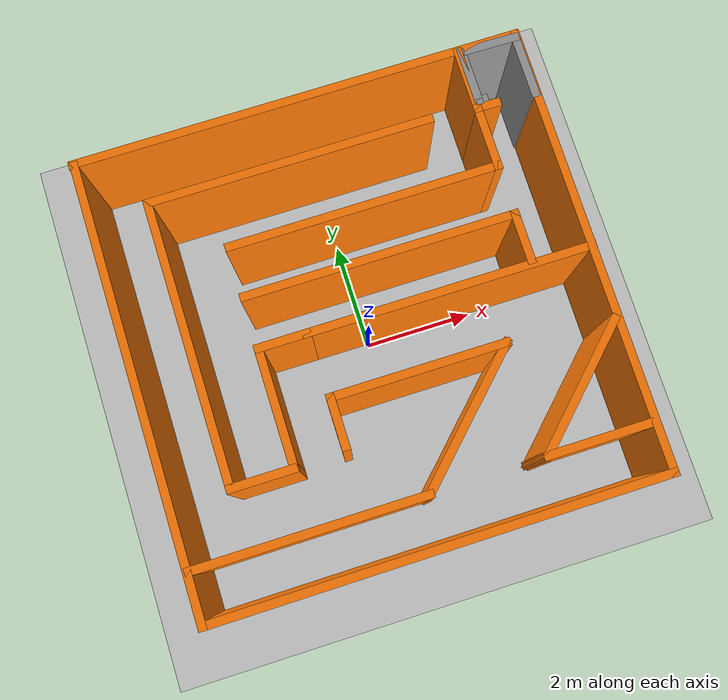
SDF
<sdf version="1.7">
 <world name="default">
  <light name="sun" type="directional">
   <pose>0 0 10 0 -0 0</pose>
   <diffuse>0.8 0.8 0.8 1</diffuse>
   <specular>0.2 0.2 0.2 1</specular>
   <attenuation>
    <range>1000</range>
    <constant>0.9</constant>
    <linear>0.01</linear>
    <quadratic>0.001</quadratic>
   </attenuation>
   <direction>-0.5 0.1 -0.9</direction>
   <spot><inner_angle>0</inner_angle><outer_angle>0</outer_angle><falloff>0</falloff></spot>
  </light>
  <model name="ground_plane">
   <static>1</static>
   <link name="link">
    <collision name="collision">
     <geometry><plane><normal>0 0 1</normal><size>100 100</size></plane></geometry>
     <surface>
      <contact><collide_bitmask>65535</collide_bitmask></contact>
      <friction><ode><mu>100</mu><mu2>50</mu2></ode></friction>
     </surface>
    </collision>
    <visual name="visual">
     <cast_shadows>0</cast_shadows>
     <geometry><plane><normal>0 0 1</normal><size>100 100</size></plane></geometry>
     <material>
      <script><uri>file://media/materials/scripts/gazebo.material</uri><name>Gazebo/Grey</name></script>
     </material>
    </visual>
   </link>
  </model>
  <gravity>0 0 -9.8</gravity>
  <magnetic_field>6e-06 2.3e-05 -4.2e-05</magnetic_field>
  <atmosphere type="adiabatic"/>
  <physics type="ode">
   <max_step_size>0.001</max_step_size>
   <real_time_factor>1</real_time_factor>
   <real_time_update_rate>1000</real_time_update_rate>
  </physics>
  <scene><ambient>0.4 0.4 0.4 1</ambient><background>0.7 0.7 0.7 1</background><shadows>1</shadows></scene>
  <spherical_coordinates>
   <surface_model>EARTH_WGS84</surface_model>
   <latitude_deg>0</latitude_deg>
   <longitude_deg>0</longitude_deg>
   <elevation>0</elevation>
   <heading_deg>0</heading_deg>
  </spherical_coordinates>
  <model name="map1">
   <pose>-0.012586 0.098358 0 0 -0 0</pose>
   <link name="Wall_1">
    <collision name="Wall_1_Collision">
     <geometry><box><size>8.25 0.15 2.5</size></box></geometry>
     <pose>0 0 1.25 0 -0 0</pose>
    </collision>
    <visual name="Wall_1_Visual">
     <pose>0 0 1.25 0 -0 0</pose>
     <geometry><box><size>8.25 0.15 2.5</size></box></geometry>
     <material>
      <script><uri>file://media/materials/scripts/gazebo.material</uri><name>Gazebo/Grey</name></script>
      <ambient>0.996078 0.47451 0.0196078 1</ambient>
     </material>
     <meta><layer>0</layer></meta>
    </visual>
    <pose>-4.03694 -0.011921 0 0 -0 1.5708</pose>
   </link>
   <link name="Wall_14">
    <collision name="Wall_14_Collision">
     <geometry><box><size>8.25 0.15 2.5</size></box></geometry>
     <pose>0 0 1.25 0 -0 0</pose>
    </collision>
    <visual name="Wall_14_Visual">
     <pose>0 0 1.25 0 -0 0</pose>
     <geometry><box><size>8.25 0.15 2.5</size></box></geometry>
     <material>
      <script><uri>file://media/materials/scripts/gazebo.material</uri><name>Gazebo/Grey</name></script>
      <ambient>0.996078 0.47451 0.0196078 1</ambient>
     </material>
     <meta><layer>0</layer></meta>
    </visual>
    <pose>4.04557 0.011992 0 0 -0 1.56865</pose>
   </link>
   <link name="Wall_15">
    <collision name="Wall_15_Collision">
     <geometry><box><size>8.25 0.15 2.5</size></box></geometry>
     <pose>0 0 1.25 0 -0 0</pose>
    </collision>
    <visual name="Wall_15_Visual">
     <pose>0 0 1.25 0 -0 0</pose>
     <geometry><box><size>8.25 0.15 2.5</size></box></geometry>
     <material>
      <script><uri>file://media/materials/scripts/gazebo.material</uri><name>Gazebo/Grey</name></script>
      <ambient>0.996078 0.47451 0.0196078 1</ambient>
     </material>
     <meta><layer>0</layer></meta>
    </visual>
    <pose>-0.004428 4.06199 0 0 -0 3.14159</pose>
   </link>
   <link name="Wall_20">
    <collision name="Wall_20_Collision">
     <geometry><box><size>4.25 0.15 2.5</size></box></geometry>
     <pose>0 0 1.25 0 -0 0</pose>
    </collision>
    <visual name="Wall_20_Visual">
     <pose>0 0 1.25 0 -0 0</pose>
     <geometry><box><size>4.25 0.15 2.5</size></box></geometry>
     <material>
      <script><uri>file://media/materials/scripts/gazebo.material</uri><name>Gazebo/Grey</name></script>
      <ambient>0.996078 0.47451 0.0196078 1</ambient>
     </material>
     <meta><layer>0</layer></meta>
    </visual>
    <pose>-1.95495 -3.17094 0 0 -0 0</pose>
   </link>
   <link name="Wall_22">
    <collision name="Wall_22_Collision">
     <geometry><box><size>3 0.15 2.5</size></box></geometry>
     <pose>0 0 1.25 0 -0 0</pose>
    </collision>
    <visual name="Wall_22_Visual">
     <pose>0 0 1.25 0 -0 0</pose>
     <geometry><box><size>3 0.15 2.5</size></box></geometry>
     <material>
      <script><uri>file://media/materials/scripts/gazebo.material</uri><name>Gazebo/Grey</name></script>
      <ambient>0.996078 0.47451 0.0196078 1</ambient>
     </material>
     <meta><layer>0</layer></meta>
    </visual>
    <pose>1.10267 -2.16331 0 0 -0 0.785398</pose>
   </link>
   <link name="Wall_23">
    <collision name="Wall_23_Collision">
     <geometry><box><size>3.25 0.15 2.5</size></box></geometry>
     <pose>0 0 1.25 0 -0 0</pose>
    </collision>
    <visual name="Wall_23_Visual">
     <pose>0 0 1.25 0 -0 0</pose>
     <geometry><box><size>3.25 0.15 2.5</size></box></geometry>
     <material>
      <script><uri>file://media/materials/scripts/gazebo.material</uri><name>Gazebo/Grey</name></script>
      <ambient>0.996078 0.47451 0.0196078 1</ambient>
     </material>
     <meta><layer>0</layer></meta>
    </visual>
    <pose>0.560299 -1.15568 0 0 -0 3.14159</pose>
   </link>
   <link name="Wall_24">
    <collision name="Wall_24_Collision">
     <geometry><box><size>1 0.15 2.5</size></box></geometry>
     <pose>0 0 1.25 0 -0 0</pose>
    </collision>
    <visual name="Wall_24_Visual">
     <pose>0 0 1.25 0 -0 0</pose>
     <geometry><box><size>1 0.15 2.5</size></box></geometry>
     <material>
      <script><uri>file://media/materials/scripts/gazebo.material</uri><name>Gazebo/Grey</name></script>
      <ambient>0.996078 0.47451 0.0196078 1</ambient>
     </material>
     <meta><layer>0</layer></meta>
    </visual>
    <pose>-0.989701 -1.58068 0 0 -0 -1.5708</pose>
   </link>
   <link name="Wall_28">
    <collision name="Wall_28_Collision">
     <geometry><box><size>2 0.15 2.5</size></box></geometry>
     <pose>0 0 1.25 0 -0 0</pose>
    </collision>
    <visual name="Wall_28_Visual">
     <pose>0 0 1.25 0 -0 0</pose>
     <geometry><box><size>2 0.15 2.5</size></box></geometry>
     <material>
      <script><uri>file://media/materials/scripts/gazebo.material</uri><name>Gazebo/Grey</name></script>
      <ambient>0.996078 0.47451 0.0196078 1</ambient>
     </material>
     <meta><layer>0</layer></meta>
    </visual>
    <pose>3.06985 -3.15573 0 0 -0 3.14159</pose>
   </link>
   <link name="Wall_30">
    <collision name="Wall_30_Collision">
     <geometry><box><size>2.75 0.15 2.5</size></box></geometry>
     <pose>0 0 1.25 0 -0 0</pose>
    </collision>
    <visual name="Wall_30_Visual">
     <pose>0 0 1.25 0 -0 0</pose>
     <geometry><box><size>2.75 0.15 2.5</size></box></geometry>
     <material>
      <script><uri>file://media/materials/scripts/gazebo.material</uri><name>Gazebo/Grey</name></script>
      <ambient>0.996078 0.47451 0.0196078 1</ambient>
     </material>
     <meta><layer>0</layer></meta>
    </visual>
    <pose>3.06409 -2.23649 0 0 -0 0.785398</pose>
   </link>
   <link name="Wall_32">
    <collision name="Wall_32_Collision">
     <geometry><box><size>5.25 0.15 2.5</size></box></geometry>
     <pose>0 0 1.25 0 -0 0</pose>
    </collision>
    <visual name="Wall_32_Visual">
     <pose>0 0 1.25 0 -0 0</pose>
     <geometry><box><size>5.25 0.15 2.5</size></box></geometry>
     <material>
      <script><uri>file://media/materials/scripts/gazebo.material</uri><name>Gazebo/Grey</name></script>
      <ambient>0.996078 0.47451 0.0196078 1</ambient>
     </material>
     <meta><layer>0</layer></meta>
    </visual>
    <pose>1.49899 0.002193 0 0 -0 3.14159</pose>
   </link>
   <link name="Wall_33">
    <collision name="Wall_33_Collision">
     <geometry><box><size>1 0.15 2.5</size></box></geometry>
     <pose>0 0 1.25 0 -0 0</pose>
    </collision>
    <visual name="Wall_33_Visual">
     <pose>0 0 1.25 0 -0 0</pose>
     <geometry><box><size>1 0.15 2.5</size></box></geometry>
     <material>
      <script><uri>file://media/materials/scripts/gazebo.material</uri><name>Gazebo/Grey</name></script>
      <ambient>0.996078 0.47451 0.0196078 1</ambient>
     </material>
     <meta><layer>0</layer></meta>
    </visual>
    <pose>-1.47601 0.002193 0 0 -0 3.14159</pose>
   </link>
   <link name="Wall_35">
    <collision name="Wall_35_Collision">
     <geometry><box><size>2.25 0.15 2.5</size></box></geometry>
     <pose>0 0 1.25 0 -0 0</pose>
    </collision>
    <visual name="Wall_35_Visual">
     <pose>0 0 1.25 0 -0 0</pose>
     <geometry><box><size>2.25 0.15 2.5</size></box></geometry>
     <material>
      <script><uri>file://media/materials/scripts/gazebo.material</uri><name>Gazebo/Grey</name></script>
      <ambient>0.996078 0.47451 0.0196078 1</ambient>
     </material>
     <meta><layer>0</layer></meta>
    </visual>
    <pose>-1.90101 -1.04781 0 0 -0 -1.5708</pose>
   </link>
   <link name="Wall_36">
    <collision name="Wall_36_Collision">
     <geometry><box><size>1.25 0.15 2.5</size></box></geometry>
     <pose>0 0 1.25 0 -0 0</pose>
    </collision>
    <visual name="Wall_36_Visual">
     <pose>0 0 1.25 0 -0 0</pose>
     <geometry><box><size>1.25 0.15 2.5</size></box></geometry>
     <material>
      <script><uri>file://media/materials/scripts/gazebo.material</uri><name>Gazebo/Grey</name></script>
      <ambient>0.996078 0.47451 0.0196078 1</ambient>
     </material>
     <meta><layer>0</layer></meta>
    </visual>
    <pose>-2.45101 -2.09781 0 0 -0 3.14159</pose>
   </link>
   <link name="Wall_37">
    <collision name="Wall_37_Collision">
     <geometry><box><size>5.25 0.15 2.5</size></box></geometry>
     <pose>0 0 1.25 0 -0 0</pose>
    </collision>
    <visual name="Wall_37_Visual">
     <pose>0 0 1.25 0 -0 0</pose>
     <geometry><box><size>5.25 0.15 2.5</size></box></geometry>
     <material>
      <script><uri>file://media/materials/scripts/gazebo.material</uri><name>Gazebo/Grey</name></script>
      <ambient>0.996078 0.47451 0.0196078 1</ambient>
     </material>
     <meta><layer>0</layer></meta>
    </visual>
    <pose>-3.00101 0.452193 0 0 -0 1.5708</pose>
   </link>
   <link name="Wall_39">
    <collision name="Wall_39_Collision">
     <geometry><box><size>1.25 0.15 2.5</size></box></geometry>
     <pose>0 0 1.25 0 -0 0</pose>
    </collision>
    <visual name="Wall_39_Visual">
     <pose>0 0 1.25 0 -0 0</pose>
     <geometry><box><size>1.25 0.15 2.5</size></box></geometry>
     <material>
      <script><uri>file://media/materials/scripts/gazebo.material</uri><name>Gazebo/Grey</name></script>
      <ambient>0.996078 0.47451 0.0196078 1</ambient>
     </material>
     <meta><layer>0</layer></meta>
    </visual>
    <pose>2.97198 3.48687 0 0 -0 -1.5708</pose>
   </link>
   <link name="Wall_41">
    <collision name="Wall_41_Collision">
     <geometry><box><size>0.5 0.15 2.5</size></box></geometry>
     <pose>0 0 1.25 0 -0 0</pose>
    </collision>
    <visual name="Wall_41_Visual">
     <pose>0 0 1.25 0 -0 0</pose>
     <geometry><box><size>0.5 0.15 2.5</size></box></geometry>
     <material>
      <script><uri>file://media/materials/scripts/gazebo.material</uri><name>Gazebo/Grey</name></script>
      <ambient>0.996078 0.47451 0.0196078 1</ambient>
     </material>
     <meta><layer>0</layer></meta>
    </visual>
    <pose>3.14698 2.93688 0 0 -0 0</pose>
   </link>
   <link name="Wall_44">
    <collision name="Wall_44_Collision">
     <geometry><box><size>1.25 0.15 2.5</size></box></geometry>
     <pose>0 0 1.25 0 -0 0</pose>
    </collision>
    <visual name="Wall_44_Visual">
     <pose>0 0 1.25 0 -0 0</pose>
     <geometry><box><size>1.25 0.15 2.5</size></box></geometry>
     <material>
      <script><uri>file://media/materials/scripts/gazebo.material</uri><name>Gazebo/Grey</name></script>
      <ambient>0.996078 0.47451 0.0196078 1</ambient>
     </material>
     <meta><layer>0</layer></meta>
    </visual>
    <pose>2.97198 2.38687 0 0 -0 -1.5708</pose>
   </link>
   <link name="Wall_46">
    <collision name="Wall_46_Collision">
     <geometry><box><size>1 0.15 2.5</size></box></geometry>
     <pose>0 0 1.25 0 -0 0</pose>
    </collision>
    <visual name="Wall_46_Visual">
     <pose>0 0 1.25 0 -0 0</pose>
     <geometry><box><size>1 0.15 2.5</size></box></geometry>
     <material>
      <script><uri>file://media/materials/scripts/gazebo.material</uri><name>Gazebo/Grey</name></script>
      <ambient>0.996078 0.47451 0.0196078 1</ambient>
     </material>
     <meta><layer>0</layer></meta>
    </visual>
    <pose>2.97198 0.498445 0 0 -0 1.5708</pose>
   </link>
   <link name="Wall_47">
    <collision name="Wall_47_Collision">
     <geometry><box><size>5 0.15 2.5</size></box></geometry>
     <pose>0 0 1.25 0 -0 0</pose>
    </collision>
    <visual name="Wall_47_Visual">
     <pose>0 0 1.25 0 -0 0</pose>
     <geometry><box><size>5 0.15 2.5</size></box></geometry>
     <material>
      <script><uri>file://media/materials/scripts/gazebo.material</uri><name>Gazebo/Grey</name></script>
      <ambient>0.996078 0.47451 0.0196078 1</ambient>
     </material>
     <meta><layer>0</layer></meta>
    </visual>
    <pose>0.546982 0.923445 0 0 -0 3.14159</pose>
   </link>
   <link name="Wall_49">
    <collision name="Wall_49_Collision">
     <geometry><box><size>5 0.15 2.5</size></box></geometry>
     <pose>0 0 1.25 0 -0 0</pose>
    </collision>
    <visual name="Wall_49_Visual">
     <pose>0 0 1.25 0 -0 0</pose>
     <geometry><box><size>5 0.15 2.5</size></box></geometry>
     <material>
      <script><uri>file://media/materials/scripts/gazebo.material</uri><name>Gazebo/Grey</name></script>
      <ambient>0.996078 0.47451 0.0196078 1</ambient>
     </material>
     <meta><layer>0</layer></meta>
    </visual>
    <pose>0.546982 1.83688 0 0 -0 3.14159</pose>
   </link>
   <link name="Wall_52">
    <collision name="Wall_52_Collision">
     <geometry><box><size>5.25 0.15 2.5</size></box></geometry>
     <pose>0 0 1.25 0 -0 0</pose>
    </collision>
    <visual name="Wall_52_Visual">
     <pose>0 0 1.25 0 -0 0</pose>
     <geometry><box><size>5.25 0.15 2.5</size></box></geometry>
     <material>
      <script><uri>file://media/materials/scripts/gazebo.material</uri><name>Gazebo/Grey</name></script>
      <ambient>0.996078 0.47451 0.0196078 1</ambient>
     </material>
     <meta><layer>0</layer></meta>
    </visual>
    <pose>-0.451012 3.00219 0 0 -0 0</pose>
   </link>
   <link name="Wall_8">
    <collision name="Wall_8_Collision">
     <geometry><box><size>8.22385 0.15 2.5</size></box></geometry>
     <pose>0 0 1.25 0 -0 0</pose>
    </collision>
    <visual name="Wall_8_Visual">
     <pose>0 0 1.25 0 -0 0</pose>
     <geometry><box><size>8.22385 0.15 2.5</size></box></geometry>
     <material>
      <script><uri>file://media/materials/scripts/gazebo.material</uri><name>Gazebo/Grey</name></script>
      <ambient>0.996078 0.47451 0.0196078 1</ambient>
     </material>
     <meta><layer>0</layer></meta>
    </visual>
    <pose>-3.1e-05 -4.04997 0 0 -0 0.002962</pose>
   </link>
   <static>1</static>
  </model>
  <model name="map1_0">
   <pose>2.04652 2.09594 0 0 -0 0</pose>
   <link name="Wall_54">
    <collision name="Wall_54_Collision">
     <geometry><box><size>1.14673 0.15 2.5</size></box></geometry>
     <pose>0 0 1.25 0 -0 0</pose>
    </collision>
    <visual name="Wall_54_Visual">
     <pose>0 0 1.25 0 -0 0</pose>
     <geometry><box><size>1.14673 0.15 2.5</size></box></geometry>
     <material>
      <script><uri>file://media/materials/scripts/gazebo.material</uri><name>Gazebo/Grey</name></script>
      <ambient>1 1 1 1</ambient>
     </material>
     <meta><layer>0</layer></meta>
    </visual>
    <pose>1.47215 2.01282 0 0 -0 -0.014184</pose>
   </link>
   <link name="Wall_59">
    <collision name="Wall_59_Collision">
     <geometry><box><size>1.25 0.15 2.5</size></box></geometry>
     <pose>0 0 1.25 0 -0 0</pose>
    </collision>
    <visual name="Wall_59_Visual">
     <pose>0 0 1.25 0 -0 0</pose>
     <geometry><box><size>1.25 0.15 2.5</size></box></geometry>
     <material>
      <script><uri>file://media/materials/scripts/gazebo.material</uri><name>Gazebo/Grey</name></script>
      <ambient>1 1 1 1</ambient>
     </material>
     <meta><layer>0</layer></meta>
    </visual>
    <pose>1.97047 1.45575 0 0 -0 -1.5708</pose>
   </link>
   <link name="Wall_61">
    <collision name="Wall_61_Collision">
     <geometry><box><size>1 0.15 2.5</size></box></geometry>
     <pose>0 0 1.25 0 -0 0</pose>
    </collision>
    <visual name="Wall_61_Visual">
     <pose>0 0 1.25 0 -0 0</pose>
     <geometry><box><size>1 0.15 2.5</size></box></geometry>
     <material>
      <script><uri>file://media/materials/scripts/gazebo.material</uri><name>Gazebo/Grey</name></script>
      <ambient>1 1 1 1</ambient>
     </material>
     <meta><layer>0</layer></meta>
    </visual>
    <pose>0.97384 1.59489 0 0 -0 -1.5708</pose>
   </link>
   <link name="Wall_62">
    <collision name="Wall_62_Collision">
     <geometry><box><size>0.25 0.15 2.5</size></box></geometry>
     <pose>0 0 1.25 0 -0 0</pose>
    </collision>
    <visual name="Wall_62_Visual">
     <pose>0 0 1.25 0 -0 0</pose>
     <geometry><box><size>0.25 0.15 2.5</size></box></geometry>
     <material>
      <script><uri>file://media/materials/scripts/gazebo.material</uri><name>Gazebo/Grey</name></script>
      <ambient>1 1 1 1</ambient>
     </material>
     <meta><layer>0</layer></meta>
    </visual>
    <pose>0.97384 1.11989 0 0 -0 -1.5708</pose>
   </link>
   <link name="Wall_63">
    <collision name="Wall_63_Collision">
     <geometry><box><size>0.25 0.15 2.5</size></box></geometry>
     <pose>0 0 1.25 0 -0 0</pose>
    </collision>
    <visual name="Wall_63_Visual">
     <pose>0 0 1.25 0 -0 0</pose>
     <geometry><box><size>0.25 0.15 2.5</size></box></geometry>
     <material>
      <script><uri>file://media/materials/scripts/gazebo.material</uri><name>Gazebo/Grey</name></script>
      <ambient>1 1 1 1</ambient>
     </material>
     <meta><layer>0</layer></meta>
    </visual>
    <pose>1.02384 1.06989 0 0 -0 0</pose>
   </link>
   <static>1</static>
  </model>
 </world>
</sdf>
